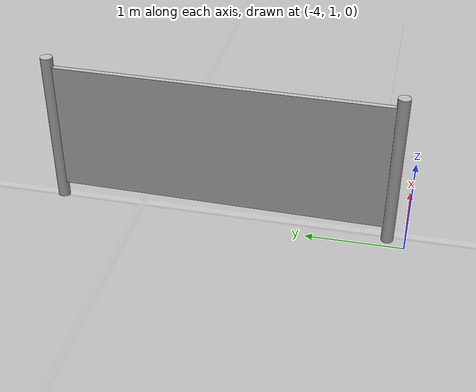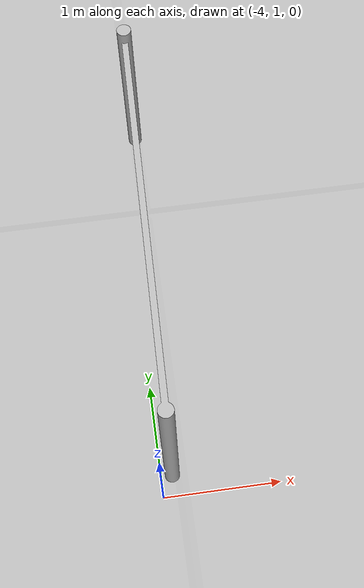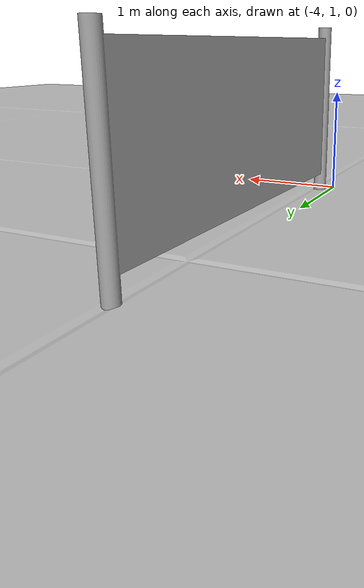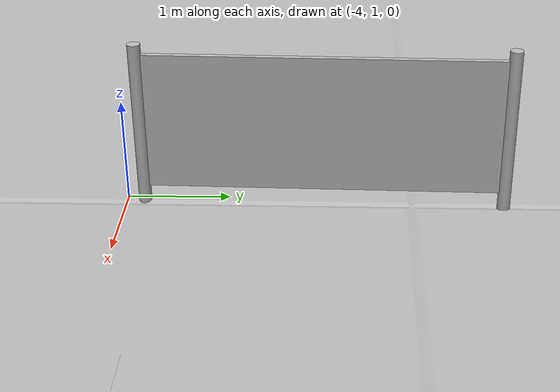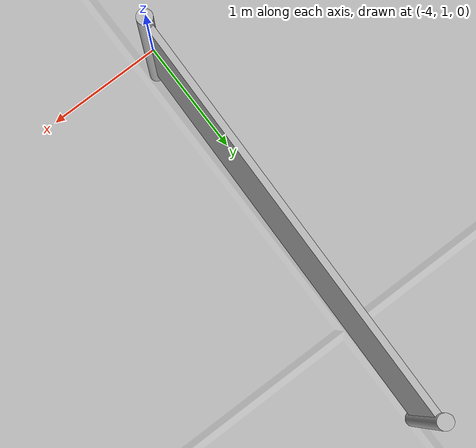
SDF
<?xml version="1.0" ?>
<sdf version="1.5">
  <world name="default">
	<physics type="opensim">
		<opensim>
			<accuracy>0.0001</accuracy>
		</opensim>
	</physics>
    <light name='sun' type='directional'>
      <cast_shadows>1</cast_shadows>
      <pose>-11.82075 -19.38429 17.2198 0 -0 0</pose>
      <diffuse>0.7 0.7 0.7 1</diffuse>
      <specular>0.2 0.2 0.2 1</specular>
      <attenuation>
        <range>1000</range>
        <constant>0.9</constant>
        <linear>0.01</linear>
        <quadratic>0.001</quadratic>
      </attenuation>
      <direction>0.3698 0.4 -0.5</direction>
    </light>
    <model name="ground">
      <static>true</static>
      <link name="link">
        <visual name="visual">
          <cast_shadows>false</cast_shadows>
          <pose>0 0 0 0 -0 0</pose>
          <geometry>
           <mesh>
              <uri>model://empty_world/meshes/emptyworldground.dae</uri>
            </mesh>
          </geometry>
        </visual>
        <collision name="collision">
          <pose>0 0 0.016 0 0 0</pose>
          <geometry>
            <box>
              <size>22.938 22.954 0.016</size>
            </box>
          </geometry>
        </collision>
      </link>
    </model>
    <model name='nrppanel'>
      <static>true</static>
      <pose>-3.84038 3.49072 -1.79562 0 0 1.55</pose>
      <include>
          <uri>model://nrp_panel</uri>
      </include>
    </model>
    <scene>
      <ambient>0.4 0.4 0.4 1</ambient>
      <background>0.7 0.7 0.7 1</background>
      <shadows>1</shadows>
    </scene>
  </world>
</sdf>

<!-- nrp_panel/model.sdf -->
<sdf version="1.5">
  <model name='nrppanel'>
    <pose>0 0 0 0 0 0</pose>
    <static>1</static>
    <link name='body'>
      <collision name="nrppanel">
        <pose>0 0 0 0 0 0</pose>
        <geometry>
          <mesh>
            <uri>model://nrp_panel/meshes/nrppanel-coll.dae</uri>
          </mesh>
        </geometry>
      </collision>
      <visual name='nrppanel'>
        <cast_shadows>1</cast_shadows>
        <geometry>
          <mesh>
            <uri>model://nrp_panel/meshes/nrppanel.dae</uri>
          </mesh>
        </geometry>
      </visual>
      <velocity_decay>
        <linear>0</linear>
        <angular>0</angular>
      </velocity_decay>
      <self_collide>0</self_collide>
      <kinematic>0</kinematic>
      <gravity>1</gravity>
    </link>
  </model>
</sdf>
